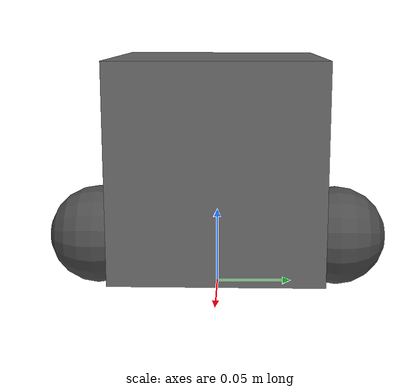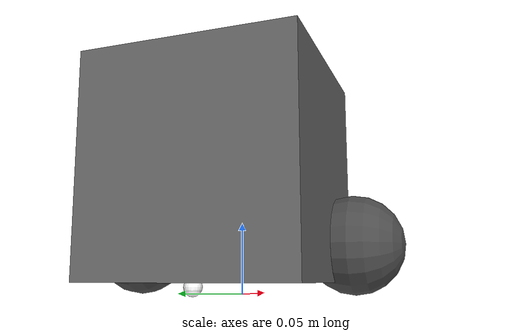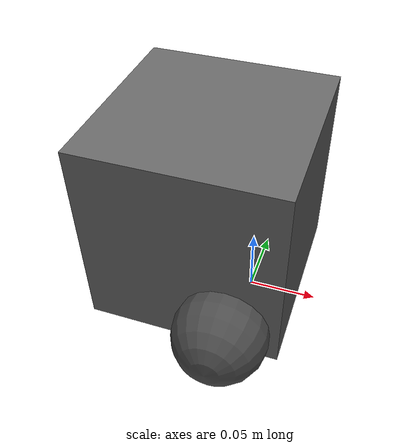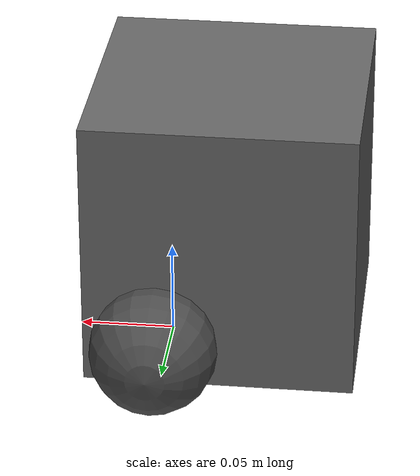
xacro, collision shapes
<?xml version="1.0"?>
<robot xmlns:xacro="http://www.ros.org/wiki/xacro">

    <xacro:include filename="inertial_macros.xacro" />

    <xacro:property name="chassis_length" value="0.140" />
    <xacro:property name="chassis_width" value="0.140" />
    <xacro:property name="chassis_height" value="0.143" />
    <xacro:property name="chassis_mass" value="1.0" />
    <xacro:property name="wheel_radius" value="0.033" />
    <xacro:property name="wheel_thickness" value="0.026" />
    <xacro:property name="wheel_mass" value="0.05" />
    <xacro:property name="wheel_offset_x" value="0.226" />
    <xacro:property name="wheel_offset_y" value="0.08" />
    <xacro:property name="wheel_offset_z" value="0.01" />
    <xacro:property name="caster_wheel_radius" value="0.0056" />
    <xacro:property name="caster_wheel_mass" value="0.01" />
    <xacro:property name="caster_wheel_offset_x" value="-0.081" />
    <xacro:property name="caster_wheel_offset_z" value="-0.004" />

    <!-- Init colour -->
    <material name="black">
        <color rgba="0.0 0.0 0.0 1.0" />
    </material>

    <material name="dark">
        <color rgba="0.3 0.3 0.3 1.0" />
    </material>

    <material name="light_black">
        <color rgba="0.4 0.4 0.4 1.0" />
    </material>

    <material name="blue">
        <color rgba="0.0 0.0 0.8 1.0" />
    </material>

    <material name="green">
        <color rgba="0.0 0.8 0.0 1.0" />
    </material>

    <material name="grey">
        <color rgba="0.5 0.5 0.5 1.0" />
    </material>

    <material name="orange">
        <color rgba="1.0 0.4235 0.0392 1.0" />
    </material>

    <material name="brown">
        <color rgba="0.8706 0.8118 0.7647 1.0" />
    </material>

    <material name="red">
        <color rgba="0.8 0.0 0.0 1.0" />
    </material>

    <material name="white">
        <color rgba="1.0 1.0 1.0 1.0" />
    </material>

    <link name="base_footprint" />

    <joint name="base_joint" type="fixed">
        <parent link="base_footprint" />
        <child link="base_link" />
        <origin xyz="0.0 0.0 0.010" rpy="0 0 0" />
    </joint>

    <link name="base_link">
        <visual>
            <origin xyz="-0.032 0 0.0" rpy="0 0 0" />
            <geometry>
                <mesh
                    filename="file://$(find armmy_turtlebot3)/models/turtlebot3_common/meshes/burger_base.dae"
                    scale="0.001 0.001 0.001" />
            </geometry>
            <material name="light_black" />
        </visual>

        <collision>
            <origin xyz="-0.032 0 0.070" rpy="0 0 0" />
            <geometry>
                <box size="0.140 0.140 0.143" />
            </geometry>
        </collision>

        <xacro:inertial_box mass="0.5" x="${chassis_length}" y="${chassis_width}"
            z="${chassis_height}">
            <origin xyz="-0.05 0 0" rpy="0 0 0" />
        </xacro:inertial_box>
    </link>

    <joint name="wheel_left_joint" type="continuous">
        <parent link="base_link" />
        <child link="wheel_left_link" />
        <origin xyz="0.0 0.08 0.023" rpy="-1.57 0 0" />
        <axis xyz="0 0 1" />
    </joint>

    <link name="wheel_left_link">
        <visual>
            <origin xyz="0 0 0" rpy="1.57 0 0" />
            <geometry>
                <mesh
                    filename="file://$(find armmy_turtlebot3)/models/turtlebot3_common/meshes/tire.dae"
                    scale="0.001 0.001 0.001" />
            </geometry>
            <material name="dark" />
        </visual>

        <collision name="wheel_left_collision">
            <origin xyz="0 0 0" rpy="0 0 0" />
            <geometry>
                <sphere radius="0.033" />
            </geometry>
        </collision>

        <xacro:inertial_cylinder mass="${wheel_mass}" length="${wheel_thickness}"
            radius="${wheel_radius}">
            <origin xyz="0 0 0" rpy="0 0 0" />
        </xacro:inertial_cylinder>
    </link>

    <joint name="wheel_right_joint" type="continuous">
        <parent link="base_link" />
        <child link="wheel_right_link" />
        <origin xyz="0.0 -0.080 0.023" rpy="-1.57 0 0" />
        <axis xyz="0 0 1" />
    </joint>

    <link name="wheel_right_link">
        <visual>
            <origin xyz="0 0 0" rpy="1.57 0 0" />
            <geometry>
                <mesh
                    filename="file://$(find armmy_turtlebot3)/models/turtlebot3_common/meshes/tire.dae"
                    scale="0.001 0.001 0.001" />
            </geometry>
            <material name="dark" />
        </visual>

        <collision name="wheel_right_collision">
            <origin xyz="0 0 0" rpy="0 0 0" />
            <geometry>
                <sphere radius="0.033" />
            </geometry>
        </collision>

        <xacro:inertial_cylinder mass="${wheel_mass}" length="${wheel_thickness}"
            radius="${wheel_radius}">
            <origin xyz="0 0 0" rpy="0 0 0" />
        </xacro:inertial_cylinder>
    </link>

    <gazebo reference="caster_back_link">
        <material>Gazebo/White</material>
        <mu1 value="0.001" />
        <mu2 value="0.001" />
    </gazebo>

    <!-- CASTER WHEEL LINK -->

    <joint name="caster_wheel_joint" type="fixed">
        <parent link="base_link" />
        <child link="caster_wheel" />
        <origin xyz="${caster_wheel_offset_x} 0 ${caster_wheel_offset_z}" />
    </joint>

    <link name="caster_wheel">
        <visual>
            <geometry>
                <sphere radius="${caster_wheel_radius}" />
            </geometry>
            <material name="white" />
        </visual>
        <collision>
            <geometry>
                <sphere radius="${caster_wheel_radius}" />
            </geometry>
        </collision>
        <xacro:inertial_sphere mass="${caster_wheel_mass}" radius="${caster_wheel_radius}">
            <origin xyz="0 0 0" rpy="0 0 0" />
        </xacro:inertial_sphere>
    </link>

    <gazebo reference="caster_wheel">
        <material>Gazebo/White</material>
        <mu1 value="0.001" />
        <mu2 value="0.001" />
    </gazebo>

    <gazebo>
        <plugin
            filename="ignition-gazebo-pose-publisher-system"
            name="gz::sim::systems::PosePublisher">
            <publish_link_pose>true</publish_link_pose>
            <publish_collision_pose>false</publish_collision_pose>
            <publish_visual_pose>false</publish_visual_pose>
            <publish_nested_model_pose>false</publish_nested_model_pose>
        </plugin>
    </gazebo>

</robot>
